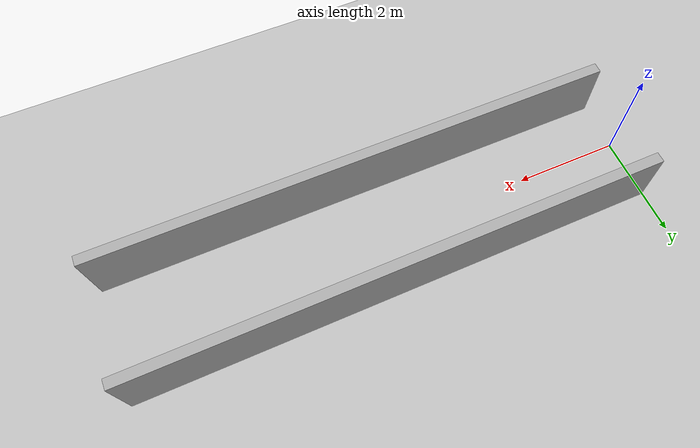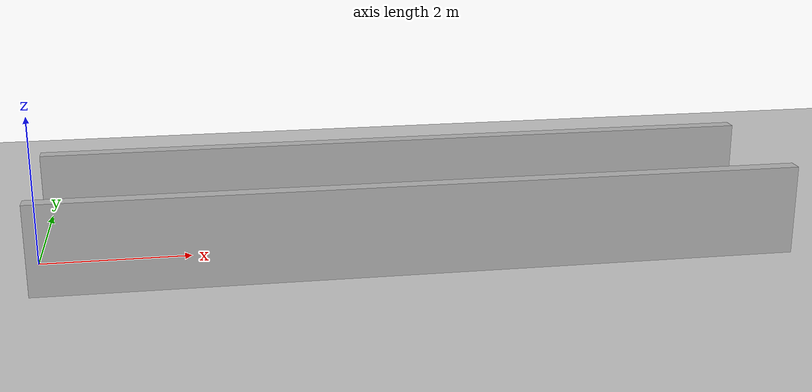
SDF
<?xml version="1.0"?>
<sdf version="1.6">
  <world name="v2-04g-r6-i1-compile-support-corridor-s5146">
    <gravity>0 0 -9.81</gravity>
    <physics name="v2_deterministic" type="ode">
      <max_step_size>0.002</max_step_size>
      <real_time_update_rate>500</real_time_update_rate>
    </physics>
    <include>
      <uri>model://sun</uri>
    </include>
    <include>
      <uri>model://ground_plane</uri>
    </include>
    <model name="corridor-left">
      <static>true</static>
      <pose>5.006588747 1.094170832 0.600000000 0 0 0.002543554</pose>
      <link name="link">
        <collision name="collision">
          <geometry>
            <box>
              <size>10.000000 0.200000 1.200000</size>
            </box>
          </geometry>
        </collision>
        <visual name="visual">
          <geometry>
            <box>
              <size>10.000000 0.200000 1.200000</size>
            </box>
          </geometry>
        </visual>
      </link>
    </model>
    <model name="corridor-right">
      <static>true</static>
      <pose>4.995362582 -1.092529828 0.600000000 0 0 -0.001358099</pose>
      <link name="link">
        <collision name="collision">
          <geometry>
            <box>
              <size>10.000000 0.200000 1.200000</size>
            </box>
          </geometry>
        </collision>
        <visual name="visual">
          <geometry>
            <box>
              <size>10.000000 0.200000 1.200000</size>
            </box>
          </geometry>
        </visual>
      </link>
    </model>
  </world>
</sdf>
